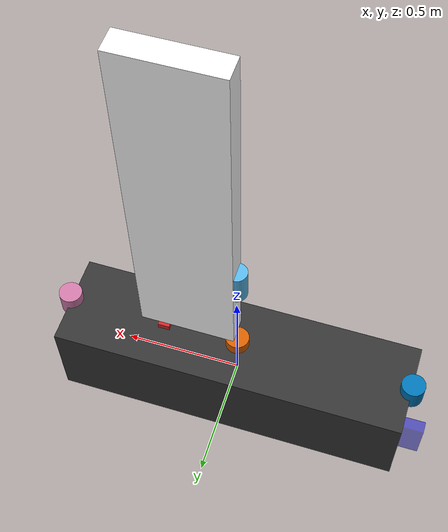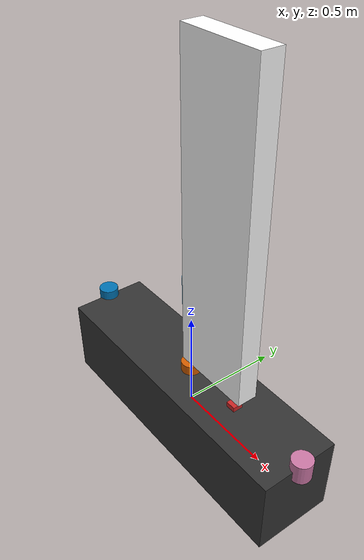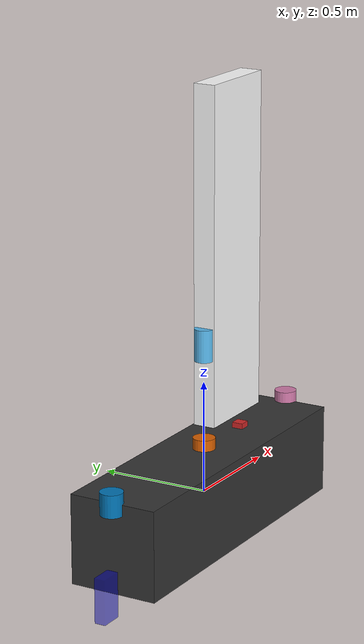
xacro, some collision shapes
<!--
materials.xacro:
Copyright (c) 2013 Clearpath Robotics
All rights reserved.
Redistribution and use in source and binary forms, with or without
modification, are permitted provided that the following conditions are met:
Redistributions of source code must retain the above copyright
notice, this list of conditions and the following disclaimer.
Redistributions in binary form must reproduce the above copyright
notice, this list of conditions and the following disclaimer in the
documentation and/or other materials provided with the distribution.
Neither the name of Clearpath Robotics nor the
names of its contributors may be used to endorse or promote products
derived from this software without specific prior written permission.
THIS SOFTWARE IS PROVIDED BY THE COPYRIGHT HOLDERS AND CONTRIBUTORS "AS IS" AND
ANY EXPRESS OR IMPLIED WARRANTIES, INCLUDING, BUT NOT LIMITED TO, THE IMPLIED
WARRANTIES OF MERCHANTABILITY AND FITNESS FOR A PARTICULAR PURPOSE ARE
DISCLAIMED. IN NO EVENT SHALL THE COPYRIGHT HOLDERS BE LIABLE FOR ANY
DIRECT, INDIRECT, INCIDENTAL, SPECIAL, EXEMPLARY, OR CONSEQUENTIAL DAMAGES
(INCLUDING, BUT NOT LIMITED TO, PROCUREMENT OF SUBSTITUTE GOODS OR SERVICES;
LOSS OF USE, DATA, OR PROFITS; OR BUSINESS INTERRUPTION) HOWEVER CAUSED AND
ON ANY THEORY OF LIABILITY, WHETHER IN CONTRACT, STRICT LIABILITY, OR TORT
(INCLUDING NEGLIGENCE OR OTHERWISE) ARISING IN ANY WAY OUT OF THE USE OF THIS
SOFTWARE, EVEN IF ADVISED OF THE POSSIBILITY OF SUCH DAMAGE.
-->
<?xml version="1.0"?>
<robot xmlns:xacro="http://www.ros.org/wiki/xacro"
       name="sailboat">
    <!-- Defines the "sailboat_base" macro -->
    <xacro:include filename="$(find sailboat_gazebo)/urdf/sailboat_base.xacro" />

    <!-- Defines the "usv_gazebo" macro which implements the plugin for USV dynamics -->
    <xacro:include filename="$(find usv_gazebo_plugins)/urdf/usv_gazebo_dynamics_plugin.xacro" />

    <xacro:include filename="$(find sailboat_gazebo_plugins)/urdf/sailboat_gazebo_dynamics_plugin.xacro" />

    <!-- Defines the macro for simulated GPS -->
    <xacro:include filename="$(find sailboat_gazebo)/urdf/gps.xacro" />

    <!-- Defines the macro for simulated IMU -->
    <xacro:include filename="$(find sailboat_gazebo)/urdf/imu.xacro" />

    <!-- Defines the macro for including simulated camera -->
    <xacro:include filename="$(find sailboat_gazebo)/urdf/camera.xacro" />

    <!-- Defines the macro for simulated laser -->

    <!-- Call the macros defined above -->
    <!-- includes basic description witout plugins -->
    <xacro:sailboat_base />
    <!-- USV dynamic model -->
    <xacro:sailboat_gazebo name="sailboat"/>

    <!-- Optional sensor plugins - called by macros defined above -->
    <xacro:sailboat_gps_gazebo name="sailboat"/>

    <xacro:sailboat_imu_gazebo name="sailboat"/>

    <xacro:sailboat_camera_gazebo name="sailboat"/>

    <xacro:include filename="$(find velodyne_description)/urdf/HDL-32E.urdf.xacro"/>
    <HDL-32E parent="base_link" name="velodyne" topic="/velodyne_points2" hz="10" samples="220">
        <origin xyz="0 0 0.6" rpy="0 0 0" />
    </HDL-32E>

</robot>

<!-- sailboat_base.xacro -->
<robot name="sailboat" xmlns:xacro="http://www.ros.org/wiki/xacro">
  <xacro:macro name="sailboat_base">
  <!-- Included URDF/XACRO Files -->
  <xacro:include filename="$(find sailboat_gazebo)/urdf/materials.xacro" />

  <!-- PROPERTY LIST -->
  <!--All units in m-kg-s-radians unit system -->
  <property name="M_PI" value="3.1415926535897931" />

  <!-- BASE-FOOTPRINT -->
  <!-- base_footprint is a fictitious link(frame) that is on the ground right below base_link origin, navigation stack depends on this frame -->
  <link name="base_footprint">
  <inertial>
    <mass value="0.0001" />
    <origin xyz="0 0 0" />
    <inertia ixx="0.0001" ixy="0.0" ixz="0.0"
             iyy="0.0001" iyz="0.0"
             izz="0.0001" />
  </inertial>

  <visual>
    <origin xyz="0 0 0" rpy="0 0 0" />
    <geometry>
      <box size="0.001 0.001 0.001" />
    </geometry>
  </visual>
  </link>

  <gazebo reference="base_footprint">
    <turnGravityOff>false</turnGravityOff>
  </gazebo>

  <joint name="base_footprint_joint" type="fixed">
    <origin xyz="0 0 0" rpy="0 0 0" />
    <parent link="base_footprint"/>
    <child link="base_link" />
  </joint>

  <!-- BASE-LINK -->
  <!--Actual body/chassis of the robot-->
  <link name="base_link">
    <inertial>
      <mass value="15.3" />
      <origin xyz="0 0 0" />
      <inertia ixx="5" ixy="0" ixz="0" iyy="10" iyz="0" izz="5" />
    </inertial>

    <visual>
      <origin xyz="0 0 0" rpy="0 0 0" />
      <geometry>
        <box size="1.5 0.4 0.4"/>
      </geometry>
      <material name="DarkGray" />
    </visual>

    <collision>
      <origin xyz="0 0 0" rpy="0 0 0" />
      <geometry>
        <box size = "1.5 0.6 0.6"/> <!--making it slightly bigger in x and z direction-->
      </geometry>
    </collision>
  </link>

  <gazebo reference="base_link">
    <material>Gazebo/FlatBlack</material>
    <turnGravityOff>false</turnGravityOff>
  </gazebo>

  <!-- Sail -->
  <link name="sail">
    <gravity>0</gravity>
    <visual>
      <geometry>
        <box size="0.4 0.1 1.5"/>
      </geometry>
      <origin rpy="0 0 0" xyz="0 0 0.75"/>
      <material name="White"/>
    </visual>
  </link>

  <gazebo reference="sail">
    <material>Gazebo/White</material>
    <turnGravityOff>false</turnGravityOff>
  </gazebo>

  <!-- Rudder -->
  <link name="rudder">
    <gravity>0</gravity>
    <visual>
      <geometry>
        <box size="0.1 0.05 0.2"/>
      </geometry>
      <origin rpy="0 0 0" xyz="-0.05 0 -0.1"/>
      <material name="Blue"/>
    </visual>
  </link>

  <gazebo reference="rudder">
    <material>Gazebo/Bule</material>
    <turnGravityOff>false</turnGravityOff>
  </gazebo>

  <link name="GPS">
    <visual>
      <geometry>
        <cylinder length="0.1" radius="0.05"/>
      </geometry>
    </visual>
  </link>

  <link name="AHRS">
    <visual>
      <geometry>
        <cylinder length="0.1" radius="0.05"/>
      </geometry>
    </visual>
  </link>

  <link name="WTST">
    <visual>
      <geometry>
        <cylinder length="0.1" radius="0.05"/>
      </geometry>
    </visual>
  </link>

  <joint name="boat_to_sail" type="fixed">
    <parent link="base_link"/>
    <child link="sail"/>
    <axis xyz="0 0 1"/>
    <origin xyz="0.2 0 .3"/>
  </joint>

  <joint name="boat_to_rudder" type="fixed">
    <parent link="base_link"/>
    <child link="rudder"/>
    <axis xyz="0 0 1"/>
    <origin xyz="-0.75 0 -0.1"/>
  </joint>

  <joint name="boat_to_GPS" type="fixed">
    <parent link="base_link"/>
    <child link="GPS"/>
    <origin xyz="-0.75 0 0.2"/>
  </joint>

  <joint name="boat_to_AHRS" type="fixed">
    <parent link="base_link"/>
    <child link="AHRS"/>
    <origin xyz="0 0 0.2"/>
  </joint>

    <joint name="boat_to_WTST" type="fixed">
    <parent link="base_link"/>
    <child link="WTST"/>
    <origin xyz="0.75 0 0.2"/>
  </joint>

  <!-- Define a location for the camera to sit -->
  <xacro:property name="camera_size" value="0.05" /> <!-- Size of square 'camera' box -->

  <joint name="camera_joint" type="fixed">
    <axis xyz="0 1 0" />
    <origin xyz="0.32 0 0.2" rpy="0 0 0"/>
    <parent link="base_link"/>
    <child link="camera_link"/>
  </joint>

  <link name="camera_link">
      <collision>
        <origin xyz="0 0 0" rpy="0 0 0"/>
        <geometry>
          <box size="${camera_size} ${camera_size} ${camera_size}"/>
        </geometry>
      </collision>
      <visual>
        <origin xyz="0 0 0" rpy="0 0 0"/>
        <geometry>
          <box size="${camera_size} ${camera_size} ${camera_size}"/>
        </geometry>
        <material name="red"/>
      </visual>
      <inertial>
        <mass value="1e-5" />
        <origin xyz="0 0 0" rpy="0 0 0"/>
        <inertia ixx="1e-6" ixy="0" ixz="0" iyy="1e-6" iyz="0" izz="1e-6" />
      </inertial>
  </link>
  <gazebo reference="camera_link">
    <material>Gazebo/Red</material>
    <turnGravityOff>false</turnGravityOff>
  </gazebo>

  <!-- Define a location for the laser to sit -->
  <xacro:property name="laser_size" value="0.05" /> <!-- Size of square 'camera' box -->

  <joint name="laser_joint" type="fixed">
      <axis xyz="0 1 0" />
      <origin xyz="0.0 0 0.2" rpy="0 0 0"/>
      <parent link="base_link"/>
      <child link="laser_link"/>
  </joint>

  <link name="laser_link">
      <collision>
          <origin xyz="0 0 0" rpy="0 0 0"/>
          <geometry>
              <box size="${laser_size} ${laser_size} ${laser_size}"/>
          </geometry>
      </collision>
      <visual>
          <origin xyz="0 0 0" rpy="0 0 0"/>
          <geometry>
              <box size="${laser_size} ${laser_size} ${laser_size}"/>
          </geometry>
          <material name="red"/>
      </visual>
      <inertial>
          <mass value="1e-5" />
          <origin xyz="0 0 0" rpy="0 0 0"/>
          <inertia ixx="1e-6" ixy="0" ixz="0" iyy="1e-6" iyz="0" izz="1e-6" />
      </inertial>
  </link>
  <gazebo reference="laser_link">
      <material>Gazebo/Red</material>
      <turnGravityOff>false</turnGravityOff>
  </gazebo>
  </xacro:macro>
</robot>

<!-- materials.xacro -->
<robot>
	<material name="Black">
		<color rgba="0.0 0.0 0.0 1.0"/>
	</material>

	<material name="Gray">
		<color rgba="0.7 0.7 0.7 1.0"/>
	</material>

	<material name="DarkGray">
		<color rgba="0.2 0.2 0.2 1.0"/>
	</material>

	<material name="White">
		<color rgba="1.0 1.0 1.0 1.0"/>
	</material>

	<material name="Yellow">
		<color rgba="0.8 0.8 0.0 1.0"/>
	</material>

	<material name="Blue">
		<color rgba="0 0 0.8 0.5"/>
	</material>
</robot>

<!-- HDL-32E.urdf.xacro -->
<robot xmlns:xacro="http://www.ros.org/wiki/xacro" name="HDL-32E">
  <xacro:property name="M_PI" value="3.1415926535897931" />
  <xacro:macro name="HDL-32E" params="*origin parent:=base_link name:=velodyne tf_prefix:='' topic:=/velodyne_points organize_cloud:=false hz:=10 lasers:=32 samples:=2187 collision_range:=0.3 min_range:=0.9 max_range:=130.0 noise:=0.008 min_angle:=-${M_PI} max_angle:=${M_PI} gpu:=false">

    <joint name="${name}_base_mount_joint" type="fixed">
      <xacro:insert_block name="origin" />
      <parent link="${parent}"/>
      <child link="${name}_base_link"/>
    </joint>

    <link name="${name}_base_link">
      <inertial>
        <mass value="1.0"/>
        <origin xyz="0 0 0.07212"/>
        <inertia ixx="${(1.0 * (3.0*0.04267*0.04267 + 0.14424*0.14424)) / 12.0}" ixy="0" ixz="0"
          iyy="${(1.0 * (3.0*0.04267*0.04267 + 0.14424*0.14424)) / 12.0}" iyz="0"
          izz="${0.5 * 1.0 * (0.04267*0.04267)}"/>
      </inertial>
      <visual>
        <geometry>
          <mesh filename="package://velodyne_description/meshes/HDL32E_base.dae" />
        </geometry>
      </visual>
      <collision>
        <origin rpy="0 0 0" xyz="0 0 0.07212"/>
        <geometry>
          <cylinder radius="0.04267" length="0.14424"/>
        </geometry>
      </collision>
    </link>

    <joint name="${name}_base_scan_joint" type="fixed" >
      <origin xyz="0 0 0.09081" rpy="0 0 0" />
      <parent link="${name}_base_link" />
      <child link="${name}"/>
    </joint>

    <link name="${name}">
      <inertial>
        <mass value="0.01"/>
        <origin xyz="0 0 0"/>
        <inertia ixx="1e-7" ixy="0" ixz="0" iyy="1e-7" iyz="0" izz="1e-7"/>
      </inertial>
      <visual>
        <origin xyz="0 0 -0.09081" rpy="0 0 0" />
        <geometry>
          <mesh filename="package://velodyne_description/meshes/HDL32E_scan.dae" />
        </geometry>
      </visual>
      <collision>
        <geometry>
          <sphere radius="0"/>
        </geometry>
      </collision>
    </link>

    <!-- Gazebo requires the velodyne_gazebo_plugins package -->
    <gazebo reference="${name}">
      <xacro:if value="${gpu}">
        <sensor type="gpu_ray" name="${name}-HDL32E">
          <pose>0 0 0 0 0 0</pose>
          <visualize>false</visualize>
          <update_rate>${hz}</update_rate>
          <ray>
            <scan>
              <horizontal>
                <samples>${samples}</samples>
                <resolution>1</resolution>
                <min_angle>${min_angle}</min_angle>
                <max_angle>${max_angle}</max_angle>
              </horizontal>
              <vertical>
                <samples>${lasers}</samples>
                <resolution>1</resolution>
                <min_angle>-${5.0*M_PI/180.0}</min_angle>
                <max_angle> ${85.0*M_PI/180.0}</max_angle>
              </vertical>
            </scan>
            <range>
              <min>${collision_range}</min>
              <max>${max_range+1}</max>
              <resolution>0.001</resolution>
            </range>
            <noise>
              <type>gaussian</type>
              <mean>0.0</mean>
              <stddev>0.0</stddev>
            </noise>
          </ray>
          <plugin name="gazebo_ros_laser_controller" filename="libgazebo_ros_velodyne_laser.so">
            <ros>
              <namespace>/${name}</namespace>
              <remapping>~/out:=${topic}</remapping>
            </ros>
            <tf_prefix>${tf_prefix}</tf_prefix>
            <frame_name>${name}</frame_name>
            <organize_cloud>${organize_cloud}</organize_cloud>
            <min_range>${min_range}</min_range>
            <max_range>${max_range}</max_range>
            <gaussian_noise>${noise}</gaussian_noise>
          </plugin>
        </sensor>
      </xacro:if>
      <xacro:unless value="${gpu}">
        <sensor type="ray" name="${name}-HDL32E">
          <pose>0 0 0 0 0 0</pose>
          <visualize>false</visualize>
          <update_rate>${hz}</update_rate>
          <ray>
            <scan>
              <horizontal>
                <samples>${samples}</samples>
                <resolution>1</resolution>
                <min_angle>${min_angle}</min_angle>
                <max_angle>${max_angle}</max_angle>
              </horizontal>
              <vertical>
                <samples>${lasers}</samples>
                <resolution>1</resolution>
                <min_angle>-${5.0*M_PI/180.0}</min_angle>
                <max_angle> ${85.0*M_PI/180.0}</max_angle>
              </vertical>
            </scan>
            <range>
              <min>${collision_range}</min>
              <max>${max_range+1}</max>
              <resolution>0.001</resolution>
            </range>
            <noise>
              <type>gaussian</type>
              <mean>0.0</mean>
              <stddev>0.0</stddev>
            </noise>
          </ray>
          <plugin name="gazebo_ros_laser_controller" filename="libgazebo_ros_velodyne_laser.so">
            <ros>
              <namespace>/${name}</namespace>
              <remapping>~/out:=${topic}</remapping>
            </ros>
            <tf_prefix>${tf_prefix}</tf_prefix>
            <frame_name>${name}</frame_name>
            <organize_cloud>${organize_cloud}</organize_cloud>
            <min_range>${min_range}</min_range>
            <max_range>${max_range}</max_range>
            <gaussian_noise>${noise}</gaussian_noise>
          </plugin>
        </sensor>
      </xacro:unless>
    </gazebo>

  </xacro:macro>
</robot>
